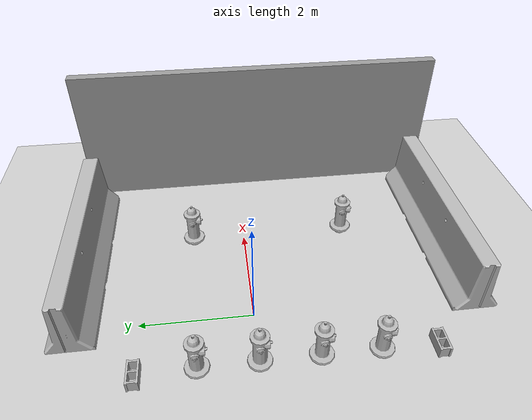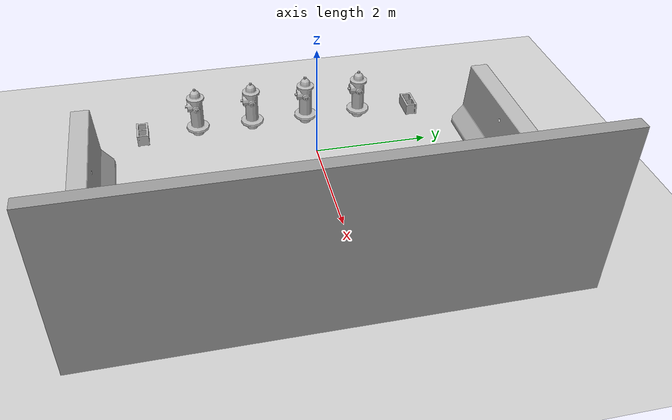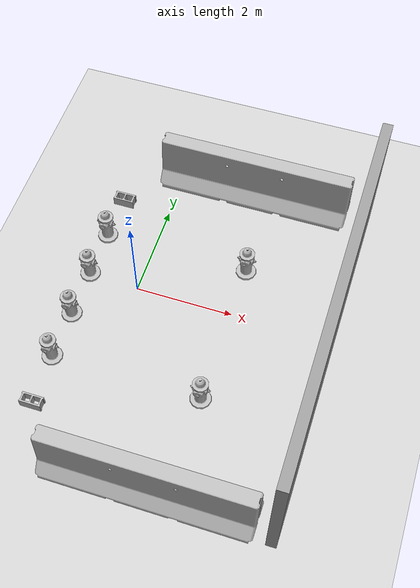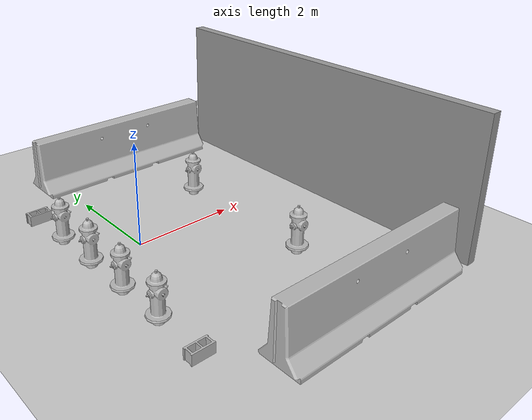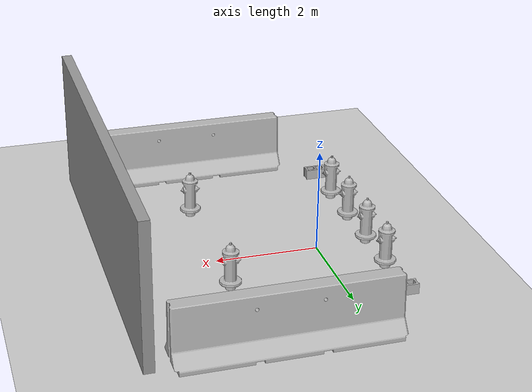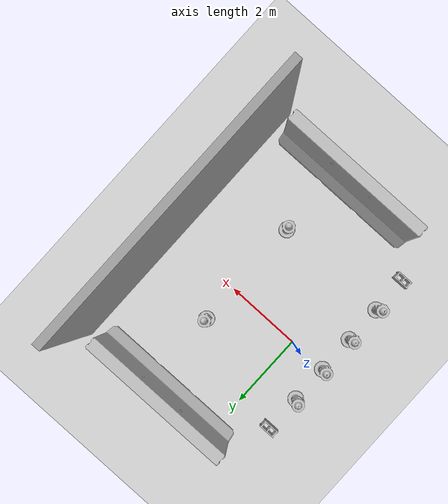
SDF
<sdf version="1.4">
 <world name="default">
  <light name="sun" type="directional">
   <pose>0 0 10 0 -0 0</pose>
   <diffuse>0.8 0.8 0.8 1</diffuse>
   <specular>0.2 0.2 0.2 1</specular>
   <attenuation>
    <range>1000</range>
    <constant>0.9</constant>
    <linear>0.01</linear>
    <quadratic>0.001</quadratic>
   </attenuation>
   <direction>-0.5 0.1 -0.9</direction>
  </light>
  <model name="ground_plane">
   <static>1</static>
   <link name="link">
    <collision name="collision">
     <geometry><plane><normal>0 0 1</normal><size>100 100</size></plane></geometry>
     <surface><friction><ode><mu>100</mu><mu2>50</mu2></ode></friction></surface>
    </collision>
    <visual name="visual">
     <cast_shadows>0</cast_shadows>
     <geometry><plane><normal>0 0 1</normal><size>100 100</size></plane></geometry>
     <material>
      <script><uri>file://media/materials/scripts/gazebo.material</uri><name>Gazebo/Grey</name></script>
     </material>
    </visual>
    <velocity_decay><linear>0</linear><angular>0</angular></velocity_decay>
   </link>
  </model>
  <model name="grey_wall">
   <static>1</static>
   <link name="link">
    <pose>0 0 1.4 0 -0 0</pose>
    <collision name="collision"><geometry><box><size>7.5 0.2 2.8</size></box></geometry></collision>
    <visual name="visual">
     <cast_shadows>0</cast_shadows>
     <geometry><box><size>7.5 0.2 2.8</size></box></geometry>
     <material>
      <script>
       <uri>model://grey_wall/materials/scripts</uri>
       <uri>model://grey_wall/materials/textures</uri>
       <name>vrc/grey_wall</name>
      </script>
     </material>
    </visual>
    <velocity_decay><linear>0</linear><angular>0</angular></velocity_decay>
   </link>
   <pose>4 -0.5 0 0 -0 1.5708</pose>
  </model>
  <physics type="ode">
   <max_step_size>0.001</max_step_size>
   <real_time_factor>1</real_time_factor>
   <real_time_update_rate>1000</real_time_update_rate>
   <gravity>0 0 -9.8</gravity>
  </physics>
  <scene><ambient>0.4 0.4 0.4 1</ambient><background>0.7 0.7 0.7 1</background><shadows>1</shadows></scene>
  <spherical_coordinates>
   <surface_model>EARTH_WGS84</surface_model>
   <latitude_deg>0</latitude_deg>
   <longitude_deg>0</longitude_deg>
   <elevation>0</elevation>
   <heading_deg>0</heading_deg>
  </spherical_coordinates>
  <model name="fire_hydrant">
   <static>1</static>
   <link name="link">
    <collision name="collision">
     <geometry><mesh><uri>model://fire_hydrant/meshes/fire_hydrant.dae</uri></mesh></geometry>
    </collision>
    <visual name="visual">
     <geometry><mesh><uri>model://fire_hydrant/meshes/fire_hydrant.dae</uri></mesh></geometry>
    </visual>
    <velocity_decay><linear>0</linear><angular>0</angular></velocity_decay>
   </link>
   <pose>-1 0 0 0 -0 0</pose>
  </model>
  <model name="fire_hydrant_0">
   <static>1</static>
   <link name="link">
    <collision name="collision">
     <geometry><mesh><uri>model://fire_hydrant/meshes/fire_hydrant.dae</uri></mesh></geometry>
    </collision>
    <visual name="visual">
     <geometry><mesh><uri>model://fire_hydrant/meshes/fire_hydrant.dae</uri></mesh></geometry>
    </visual>
    <velocity_decay><linear>0</linear><angular>0</angular></velocity_decay>
   </link>
   <pose>-1 1 0 0 -0 0</pose>
  </model>
  <model name="fire_hydrant_1">
   <static>1</static>
   <link name="link">
    <collision name="collision">
     <geometry><mesh><uri>model://fire_hydrant/meshes/fire_hydrant.dae</uri></mesh></geometry>
    </collision>
    <visual name="visual">
     <geometry><mesh><uri>model://fire_hydrant/meshes/fire_hydrant.dae</uri></mesh></geometry>
    </visual>
    <velocity_decay><linear>0</linear><angular>0</angular></velocity_decay>
   </link>
   <pose>-1 -1 0 0 -0 0</pose>
  </model>
  <model name="jersey_barrier">
   <static>1</static>
   <link name="link">
    <visual name="visual">
     <geometry><mesh><uri>model://jersey_barrier/meshes/jersey_barrier.dae</uri></mesh></geometry>
    </visual>
    <collision name="upright">
     <pose>0 0 0.5715 0 -0 0</pose>
     <geometry><box><size>4.06542 0.3063 1.143</size></box></geometry>
    </collision>
    <collision name="base">
     <pose>0 0 0.032258 0 -0 0</pose>
     <geometry><box><size>4.06542 0.8107 0.064516</size></box></geometry>
    </collision>
    <collision name="base2">
     <pose>0 0 0.1 0 -0 0</pose>
     <geometry><box><size>4.06542 0.65 0.1</size></box></geometry>
    </collision>
    <collision name="base3">
     <pose>0 0 0.2 0 -0 0</pose>
     <geometry><box><size>4.06542 0.5 0.1</size></box></geometry>
    </collision>
    <collision name="left-angle">
     <pose>0 -0.224 0.2401 0.9 -0 0</pose>
     <geometry><box><size>4.06542 0.5 0.064516</size></box></geometry>
    </collision>
    <collision name="right-angle">
     <pose>0 0.224 0.2401 -0.9 0 0</pose>
     <geometry><box><size>4.06542 0.5 0.064516</size></box></geometry>
    </collision>
    <velocity_decay><linear>0</linear><angular>0</angular></velocity_decay>
   </link>
   <pose>1.58707 3.06887 0 0 -0 0</pose>
  </model>
  <model name="jersey_barrier_0">
   <static>1</static>
   <link name="link">
    <visual name="visual">
     <geometry><mesh><uri>model://jersey_barrier/meshes/jersey_barrier.dae</uri></mesh></geometry>
    </visual>
    <collision name="upright">
     <pose>0 0 0.5715 0 -0 0</pose>
     <geometry><box><size>4.06542 0.3063 1.143</size></box></geometry>
    </collision>
    <collision name="base">
     <pose>0 0 0.032258 0 -0 0</pose>
     <geometry><box><size>4.06542 0.8107 0.064516</size></box></geometry>
    </collision>
    <collision name="base2">
     <pose>0 0 0.1 0 -0 0</pose>
     <geometry><box><size>4.06542 0.65 0.1</size></box></geometry>
    </collision>
    <collision name="base3">
     <pose>0 0 0.2 0 -0 0</pose>
     <geometry><box><size>4.06542 0.5 0.1</size></box></geometry>
    </collision>
    <collision name="left-angle">
     <pose>0 -0.224 0.2401 0.9 -0 0</pose>
     <geometry><box><size>4.06542 0.5 0.064516</size></box></geometry>
    </collision>
    <collision name="right-angle">
     <pose>0 0.224 0.2401 -0.9 0 0</pose>
     <geometry><box><size>4.06542 0.5 0.064516</size></box></geometry>
    </collision>
    <velocity_decay><linear>0</linear><angular>0</angular></velocity_decay>
   </link>
   <pose>1.64229 -3.90939 0 0 -0 0</pose>
  </model>
  <model name="fire_hydrant_2">
   <static>1</static>
   <link name="link">
    <collision name="collision">
     <geometry><mesh><uri>model://fire_hydrant/meshes/fire_hydrant.dae</uri></mesh></geometry>
    </collision>
    <visual name="visual">
     <geometry><mesh><uri>model://fire_hydrant/meshes/fire_hydrant.dae</uri></mesh></geometry>
    </visual>
    <velocity_decay><linear>0</linear><angular>0</angular></velocity_decay>
   </link>
   <pose>-1 -2 0 0 -0 0</pose>
  </model>
  <model name="cinder_block_1">
   <link name="link">
    <inertial>
     <pose>0 0 0.1016 0 -0 0</pose>
     <mass>5</mass>
     <inertia>
      <ixx>0.028705</ixx>
      <ixy>0</ixy>
      <iyy>0.073708</iyy>
      <ixz>0</ixz>
      <iyz>0</iyz>
      <izz>0.06908</izz>
     </inertia>
    </inertial>
    <visual name="visual">
     <geometry><mesh><uri>model://cinder_block/meshes/cinder_block.dae</uri></mesh></geometry>
    </visual>
    <collision name="left">
     <pose>0 -0.08465 0.1016 0 -0 0</pose>
     <geometry><box><size>0.43495 0.0339 0.2032</size></box></geometry>
     <surface>
      <contact><ode><max_vel>0.1</max_vel><min_depth>0.001</min_depth></ode></contact>
      <friction><ode><mu>1</mu><mu2>1</mu2></ode></friction>
     </surface>
    </collision>
    <collision name="right">
     <pose>0 0.08465 0.1016 0 -0 0</pose>
     <geometry><box><size>0.43495 0.0339 0.2032</size></box></geometry>
     <surface>
      <contact><ode><max_vel>0.1</max_vel><min_depth>0.001</min_depth></ode></contact>
      <friction><ode><mu>1</mu><mu2>1</mu2></ode></friction>
     </surface>
    </collision>
    <collision name="front">
     <pose>0.18625 0 0.1016 0 -0 0</pose>
     <geometry><box><size>0.0339 0.1354 0.203</size></box></geometry>
     <surface>
      <contact><ode><max_vel>0.1</max_vel><min_depth>0.001</min_depth></ode></contact>
      <friction><ode><mu>1</mu><mu2>1</mu2></ode></friction>
     </surface>
    </collision>
    <collision name="middle">
     <pose>0 0 0.1016 0 -0 0</pose>
     <geometry><box><size>0.0339 0.1354 0.203</size></box></geometry>
     <surface>
      <contact><ode><max_vel>0.1</max_vel><min_depth>0.001</min_depth></ode></contact>
      <friction><ode><mu>1</mu><mu2>1</mu2></ode></friction>
     </surface>
    </collision>
    <collision name="back">
     <pose>-0.18625 0 0.1016 0 -0 0</pose>
     <geometry><box><size>0.0339 0.1354 0.203</size></box></geometry>
     <surface>
      <contact><ode><max_vel>0.1</max_vel><min_depth>0.001</min_depth></ode></contact>
      <friction><ode><mu>1</mu><mu2>1</mu2></ode></friction>
     </surface>
    </collision>
    <velocity_decay><linear>0</linear><angular>0</angular></velocity_decay>
   </link>
   <pose>-1 2 -6e-06 4e-06 2.6e-05 0</pose>
   <static>0</static>
  </model>
  <model name="cinder_block_2">
   <link name="link">
    <inertial>
     <pose>0 0 0.1016 0 -0 0</pose>
     <mass>5</mass>
     <inertia>
      <ixx>0.028705</ixx>
      <ixy>0</ixy>
      <iyy>0.073708</iyy>
      <ixz>0</ixz>
      <iyz>0</iyz>
      <izz>0.06908</izz>
     </inertia>
    </inertial>
    <visual name="visual">
     <geometry><mesh><uri>model://cinder_block/meshes/cinder_block.dae</uri></mesh></geometry>
    </visual>
    <collision name="left">
     <pose>0 -0.08465 0.1016 0 -0 0</pose>
     <geometry><box><size>0.43495 0.0339 0.2032</size></box></geometry>
     <surface>
      <contact><ode><max_vel>0.1</max_vel><min_depth>0.001</min_depth></ode></contact>
      <friction><ode><mu>1</mu><mu2>1</mu2></ode></friction>
     </surface>
    </collision>
    <collision name="right">
     <pose>0 0.08465 0.1016 0 -0 0</pose>
     <geometry><box><size>0.43495 0.0339 0.2032</size></box></geometry>
     <surface>
      <contact><ode><max_vel>0.1</max_vel><min_depth>0.001</min_depth></ode></contact>
      <friction><ode><mu>1</mu><mu2>1</mu2></ode></friction>
     </surface>
    </collision>
    <collision name="front">
     <pose>0.18625 0 0.1016 0 -0 0</pose>
     <geometry><box><size>0.0339 0.1354 0.203</size></box></geometry>
     <surface>
      <contact><ode><max_vel>0.1</max_vel><min_depth>0.001</min_depth></ode></contact>
      <friction><ode><mu>1</mu><mu2>1</mu2></ode></friction>
     </surface>
    </collision>
    <collision name="middle">
     <pose>0 0 0.1016 0 -0 0</pose>
     <geometry><box><size>0.0339 0.1354 0.203</size></box></geometry>
     <surface>
      <contact><ode><max_vel>0.1</max_vel><min_depth>0.001</min_depth></ode></contact>
      <friction><ode><mu>1</mu><mu2>1</mu2></ode></friction>
     </surface>
    </collision>
    <collision name="back">
     <pose>-0.18625 0 0.1016 0 -0 0</pose>
     <geometry><box><size>0.0339 0.1354 0.203</size></box></geometry>
     <surface>
      <contact><ode><max_vel>0.1</max_vel><min_depth>0.001</min_depth></ode></contact>
      <friction><ode><mu>1</mu><mu2>1</mu2></ode></friction>
     </surface>
    </collision>
    <velocity_decay><linear>0</linear><angular>0</angular></velocity_decay>
   </link>
   <pose>-1 -3 -6e-06 4e-06 2.6e-05 0</pose>
   <static>0</static>
  </model>
  <model name="fire_hydrant_3">
   <static>1</static>
   <link name="link">
    <collision name="collision">
     <geometry><mesh><uri>model://fire_hydrant/meshes/fire_hydrant.dae</uri></mesh></geometry>
    </collision>
    <visual name="visual">
     <geometry><mesh><uri>model://fire_hydrant/meshes/fire_hydrant.dae</uri></mesh></geometry>
    </visual>
    <velocity_decay><linear>0</linear><angular>0</angular></velocity_decay>
   </link>
   <pose>2 1 0 0 -0 0</pose>
  </model>
  <model name="fire_hydrant_4">
   <static>1</static>
   <link name="link">
    <collision name="collision">
     <geometry><mesh><uri>model://fire_hydrant/meshes/fire_hydrant.dae</uri></mesh></geometry>
    </collision>
    <visual name="visual">
     <geometry><mesh><uri>model://fire_hydrant/meshes/fire_hydrant.dae</uri></mesh></geometry>
    </visual>
    <velocity_decay><linear>0</linear><angular>0</angular></velocity_decay>
   </link>
   <pose>2 -2 0 0 -0 0</pose>
  </model>
 </world>
</sdf>
